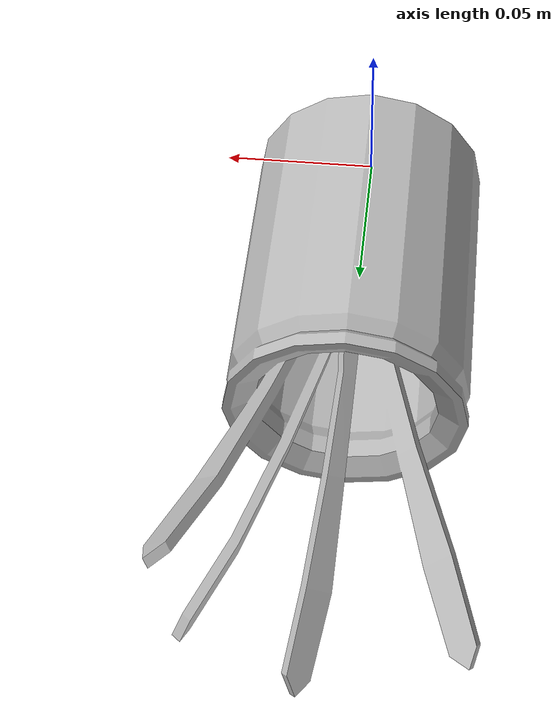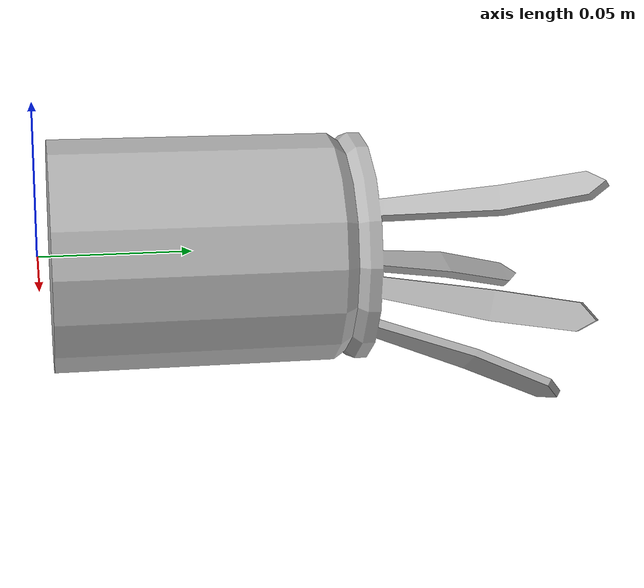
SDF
<?xml version="1.0" ?>
<sdf version="1.4">
  <model name="shelf2_spoon_cup">
    <link name="body">
      <pose>0 0 0 0 0 0</pose>
      <inertial>
        <pose>   0.001149   0.058516  -0.001214 0 0 0</pose>
        <mass>0.5</mass>
        <inertia>
          <ixx>0.01</ixx>
          <ixy>0</ixy>
          <ixz>0</ixz>
          <iyy>0.01</iyy>
          <iyz>0</iyz>
          <izz>0.01</izz>
        </inertia>
      </inertial>
      <collision name="collision">
        <geometry>
          <mesh>
            <uri>model://bookshelf/shelf2_items/spoon_cup/spoon_cup.dae</uri>
          </mesh>
        </geometry>
      </collision>
      <visual name="visual">
        <geometry>
          <mesh>
            <uri>model://bookshelf/shelf2_items/spoon_cup/spoon_cup.dae</uri>
          </mesh>
        </geometry>
      </visual>
    </link>
  </model>
</sdf>
